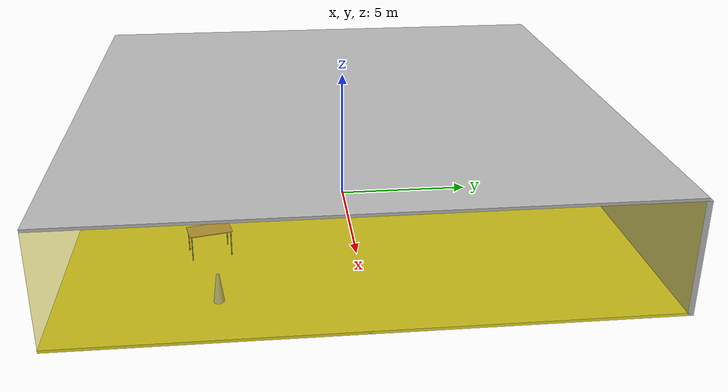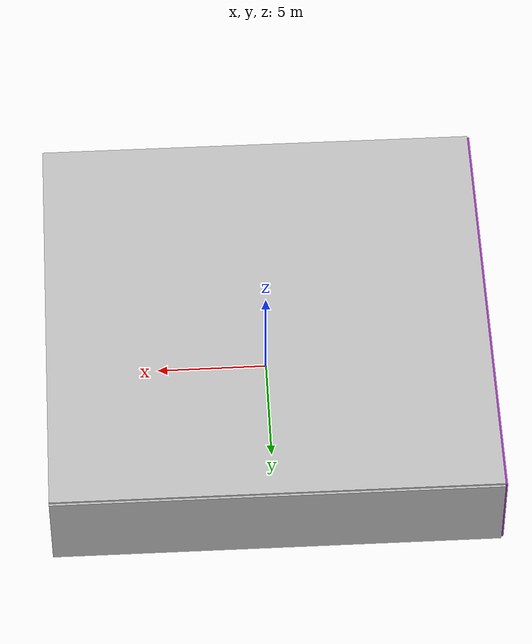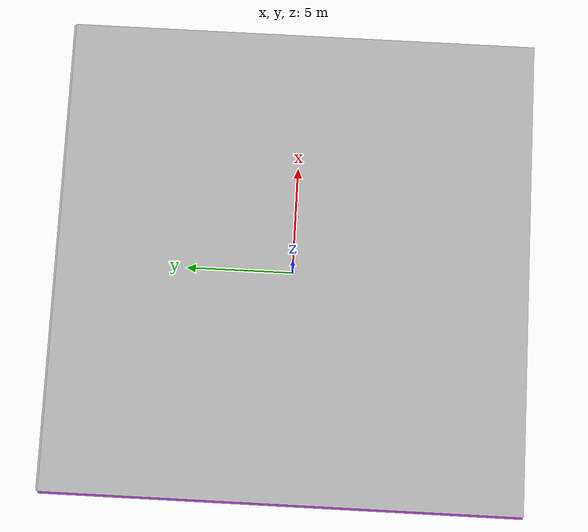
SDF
<sdf version="1.4">
 <world name="default">
  <physics type="ode">
   <max_step_size>0.001</max_step_size>
   <real_time_factor>1</real_time_factor>
   <real_time_update_rate>1000</real_time_update_rate>
   <gravity>0 0 -9.8</gravity>
  </physics>
  <scene><ambient>0.4 0.4 0.4 1</ambient><background>0.7 0.7 0.7 1</background><shadows>1</shadows></scene>
  <model name="Surrounding">
   <static>1</static>
   <link name="Ceiling">
    <collision name="Ceiling_Collision"><geometry><box><size>20 20 0.1</size></box></geometry></collision>
    <visual name="Ceiling_Visual">
     <geometry><box><size>20 20 0.1</size></box></geometry>
     <material>
      <script><uri>file://media/materials/scripts/gazebo.material</uri><name>Gazebo/CloudySky</name></script>
     </material>
    </visual>
    <pose>0 0 4.05 0 0 0</pose>
   </link>
   <link name="Wall_South">
    <collision name="Wall_South_Collision">
     <geometry><box><size>20 0 4</size></box></geometry>
     <pose>0 0 2 0 -0 0</pose>
    </collision>
    <visual name="Wall_South_Visual">
     <pose>0 0 2 0 -0 0</pose>
     <geometry><box><size>20 0 4</size></box></geometry>
     <material>
      <script><uri>file://media/materials/scripts/gazebo.material</uri><name>Gazebo/BlueTransparent</name></script>
     </material>
    </visual>
    <velocity_decay><linear>0</linear><angular>0</angular></velocity_decay>
    <pose>0 -10 0 0 -0 0</pose>
   </link>
   <link name="Wall_East">
    <collision name="Wall_21_Collision">
     <geometry><box><size>20 0 4</size></box></geometry>
     <pose>0 0 2 0 -0 0</pose>
    </collision>
    <visual name="Wall_21_Visual">
     <pose>0 0 2 0 -0 0</pose>
     <geometry><box><size>20 0 4</size></box></geometry>
     <material>
      <script>
       <uri>file://media/materials/scripts/gazebo.material</uri>
       <name>Gazebo/YellowTransparent</name>
      </script>
     </material>
    </visual>
    <velocity_decay><linear>0</linear><angular>0</angular></velocity_decay>
    <pose>10 0 0 0 -0 1.5708</pose>
   </link>
   <link name="Wall_North">
    <collision name="Wall_22_Collision">
     <geometry><box><size>20 0.2 4</size></box></geometry>
     <pose>0 0 2 0 -0 0</pose>
    </collision>
    <visual name="Wall_22_Visual">
     <pose>0 0 2 0 -0 0</pose>
     <geometry><box><size>20 0.2 4</size></box></geometry>
     <material>
      <script><uri>file://media/materials/scripts/gazebo.material</uri><name>Gazebo/PioneerBody</name></script>
     </material>
    </visual>
    <velocity_decay><linear>0</linear><angular>0</angular></velocity_decay>
    <pose>0 10 0 0 -0 0</pose>
   </link>
   <link name="Wall_West">
    <collision name="Wall_23_Collision">
     <geometry><box><size>20 0.2 4</size></box></geometry>
     <pose>0 0 2 0 -0 0</pose>
    </collision>
    <visual name="Wall_23_Visual">
     <pose>0 0 2 0 -0 0</pose>
     <geometry><box><size>20 0.2 4</size></box></geometry>
     <material>
      <script><uri>file://media/materials/scripts/gazebo.material</uri><name>Gazebo/PurpleGlow</name></script>
     </material>
    </visual>
    <velocity_decay><linear>0</linear><angular>0</angular></velocity_decay>
    <pose>-10 0 0 0 0 -1.5708</pose>
   </link>
   <link name="Ground_link">
    <collision name="collision">
     <pose>0 0 .05 0 -0 0</pose>
     <geometry><box><size>20 20 0.1</size></box></geometry>
    </collision>
    <visual name="visual">
     <pose>0 0 .05 0 -0 0</pose>
     <geometry><box><size>20 20 0.1</size></box></geometry>
     <material>
      <script><uri>file://media/materials/scripts/gazebo.material</uri><name>Gazebo/Yellow</name></script>
     </material>
    </visual>
   </link>
   <static>1</static>
  </model>
  <spherical_coordinates>
   <surface_model>EARTH_WGS84</surface_model>
   <latitude_deg>0</latitude_deg>
   <longitude_deg>0</longitude_deg>
   <elevation>0</elevation>
   <heading_deg>0</heading_deg>
  </spherical_coordinates>
  <light name="lightball_0" type="diffuse">
   <diffuse>0.8 0.8 0.8 1</diffuse>
   <specular>0.2 0.2 0.2 1</specular>
   <attenuation>
    <range>100</range>
    <constant>0.7</constant>
    <linear>0.01</linear>
    <quadratic>0.001</quadratic>
   </attenuation>
   <direction>-0.5 0.1 -0.9</direction>
   <pose>-8.56619372233 8.80356854196 2.16092890079 0 0 0</pose>
  </light>
  <light name="lightball_1" type="diffuse">
   <diffuse>0.8 0.8 0.8 1</diffuse>
   <specular>0.2 0.2 0.2 1</specular>
   <attenuation>
    <range>100</range>
    <constant>0.7</constant>
    <linear>0.01</linear>
    <quadratic>0.001</quadratic>
   </attenuation>
   <direction>-0.5 0.1 -0.9</direction>
   <pose>-1.57920094624 2.13455966475 2.3660817796 0 0 0</pose>
  </light>
  <light name="lightball_2" type="diffuse">
   <diffuse>0.8 0.8 0.8 1</diffuse>
   <specular>0.2 0.2 0.2 1</specular>
   <attenuation>
    <range>100</range>
    <constant>0.7</constant>
    <linear>0.01</linear>
    <quadratic>0.001</quadratic>
   </attenuation>
   <direction>-0.5 0.1 -0.9</direction>
   <pose>6.6077838237 4.88754349496 2.53571808917 0 0 0</pose>
  </light>
  <light name="lightball_3" type="diffuse">
   <diffuse>0.8 0.8 0.8 1</diffuse>
   <specular>0.2 0.2 0.2 1</specular>
   <attenuation>
    <range>100</range>
    <constant>0.7</constant>
    <linear>0.01</linear>
    <quadratic>0.001</quadratic>
   </attenuation>
   <direction>-0.5 0.1 -0.9</direction>
   <pose>-6.23433190578 4.80025578071 2.59685106704 0 0 0</pose>
  </light>
  <light name="lightball_4" type="diffuse">
   <diffuse>0.8 0.8 0.8 1</diffuse>
   <specular>0.2 0.2 0.2 1</specular>
   <attenuation>
    <range>100</range>
    <constant>0.7</constant>
    <linear>0.01</linear>
    <quadratic>0.001</quadratic>
   </attenuation>
   <direction>-0.5 0.1 -0.9</direction>
   <pose>-6.62822564204 5.865310887 2.35001310708 0 0 0</pose>
  </light>
  <light name="lightball_5" type="diffuse">
   <diffuse>0.8 0.8 0.8 1</diffuse>
   <specular>0.2 0.2 0.2 1</specular>
   <attenuation>
    <range>100</range>
    <constant>0.7</constant>
    <linear>0.01</linear>
    <quadratic>0.001</quadratic>
   </attenuation>
   <direction>-0.5 0.1 -0.9</direction>
   <pose>-7.41920213094 -3.26273919774 2.99554617902 0 0 0</pose>
  </light>
  <light name="lightball_6" type="diffuse">
   <diffuse>0.8 0.8 0.8 1</diffuse>
   <specular>0.2 0.2 0.2 1</specular>
   <attenuation>
    <range>100</range>
    <constant>0.7</constant>
    <linear>0.01</linear>
    <quadratic>0.001</quadratic>
   </attenuation>
   <direction>-0.5 0.1 -0.9</direction>
   <pose>7.6837068128 2.10912129143 1.72022491398 0 0 0</pose>
  </light>
  <light name="lightball_7" type="diffuse">
   <diffuse>0.8 0.8 0.8 1</diffuse>
   <specular>0.2 0.2 0.2 1</specular>
   <attenuation>
    <range>100</range>
    <constant>0.7</constant>
    <linear>0.01</linear>
    <quadratic>0.001</quadratic>
   </attenuation>
   <direction>-0.5 0.1 -0.9</direction>
   <pose>3.94604699828 9.33631880994 2.73422274543 0 0 0</pose>
  </light>
  <light name="lightball_8" type="diffuse">
   <diffuse>0.8 0.8 0.8 1</diffuse>
   <specular>0.2 0.2 0.2 1</specular>
   <attenuation>
    <range>100</range>
    <constant>0.7</constant>
    <linear>0.01</linear>
    <quadratic>0.001</quadratic>
   </attenuation>
   <direction>-0.5 0.1 -0.9</direction>
   <pose>8.4877687755 -8.80402002795 1.5950002645 0 0 0</pose>
  </light>
  <include><uri>model://cabinet</uri><pose>-8.12652847302 -2.03666324588 0 0 0 2.37322488021</pose></include>
  <include><uri>model://table</uri><pose>-4.80361595934 5.20007191286 0 0 0 2.83239734206</pose></include>
  <include><uri>model://table</uri><pose>-1.69452129639 6.89184432756 0 0 0 0.0758618308832</pose></include>
  <include><uri>model://table</uri><pose>4.62084725016 -5.13112364623 0 0 0 1.78033464289</pose></include>
  <include>
   <uri>model://construction_cone</uri>
   <pose>7.83704308159 -4.7462919805 0 0 0 2.76514670151</pose>
  </include>
 </world>
</sdf>

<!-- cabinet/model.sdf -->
<sdf version="1.5">
  <model name="cabinet">
    <static>true</static>
    <link name="cabinet_bottom_plate">
      <inertial>
        <pose>0 0 -1 0 0 0</pose>
        <inertia>
          <ixx>2.050000</ixx>
          <ixy>0</ixy>
          <ixz>0</ixz>
          <iyy>2.050000</iyy>
          <iyz>0</iyz>
          <izz>2.050000</izz>
        </inertia>
        <mass>25.000000</mass>
      </inertial>
      <collision name="cabinet_bottom_plate_geom">
        <pose>0 0 0.010000 0 0 0</pose>
        <geometry>
          <box>
            <size>0.450000 0.450000 0.020000</size>
          </box>
        </geometry>
      </collision>
      <visual name="cabinet_bottom_plate_geom_visual">
        <pose>0 0 0.010000 0 0 0</pose>
        <geometry>
          <box>
            <size>0.450000 0.450000 0.020000</size>
          </box>
        </geometry>
        <material>
          <script>
            <uri>model://media/materials/scripts/gazebo.material</uri>
            <name>Gazebo/Wood</name>
          </script>
        </material>
      </visual>
      <collision name="cabinet_bottom_plate_geom_cabinet_back_plate">
        <pose>0.235000 0 0.510000 0 0 0</pose>
        <geometry>
          <box>
            <size>0.020000 0.450000 1.020000</size>
          </box>
        </geometry>
      </collision>
      <visual name="cabinet_bottom_plate_geom_cabinet_back_plate_visual">
        <pose>0.235000 0 0.510000 0 0 0</pose>
        <geometry>
          <box>
            <size>0.020000 0.450000 1.020000</size>
          </box>
        </geometry>
        <material>
          <script>
            <uri>model://media/materials/scripts/gazebo.material</uri>
            <name>Gazebo/Wood</name>
          </script>
        </material>
      </visual>
      <collision name="cabinet_bottom_plate_geom_cabinet_left_plate">
        <pose>0 0.235000 0.510000 0 0 0</pose>
        <geometry>
          <box>
            <size>0.450000 0.020000 1.020000</size>
          </box>
        </geometry>
      </collision>
      <visual name="cabinet_bottom_plate_geom_cabinet_left_plate_visual">
        <pose>0 0.235000 0.510000 0 0 0</pose>
        <geometry>
          <box>
            <size>0.450000 0.020000 1.020000</size>
          </box>
        </geometry>
        <material>
          <script>
            <uri>model://media/materials/scripts/gazebo.material</uri>
            <name>Gazebo/Wood</name>
          </script>
        </material>
      </visual>
      <collision name="cabinet_bottom_plate_geom_cabinet_middle_plate">
        <pose>0 0 0.510000 0 0 0</pose>
        <geometry>
          <box>
            <size>0.450000 0.450000 0.020000</size>
          </box>
        </geometry>
      </collision>
      <visual name="cabinet_bottom_plate_geom_cabinet_middle_plate_visual">
        <pose>0 0 0.510000 0 0 0</pose>
        <geometry>
          <box>
            <size>0.450000 0.450000 0.020000</size>
          </box>
        </geometry>
        <material>
          <script>
            <uri>model://media/materials/scripts/gazebo.material</uri>
            <name>Gazebo/Wood</name>
          </script>
        </material>
      </visual>
      <collision name="cabinet_bottom_plate_geom_cabinet_right_plate">
        <pose>0 -0.235000 0.510000 0 0 0</pose>
        <geometry>
          <box>
            <size>0.450000 0.020000 1.020000</size>
          </box>
        </geometry>
      </collision>
      <visual name="cabinet_bottom_plate_geom_cabinet_right_plate_visual">
        <pose>0 -0.235000 0.510000 0 0 0</pose>
        <geometry>
          <box>
            <size>0.450000 0.020000 1.020000</size>
          </box>
        </geometry>
        <material>
          <script>
            <uri>model://media/materials/scripts/gazebo.material</uri>
            <name>Gazebo/Wood</name>
          </script>
        </material>
      </visual>
      <collision name="cabinet_bottom_plate_geom_cabinet_top_plate">
        <pose>0 0 1.010000 0 0 0</pose>
        <geometry>
          <box>
            <size>0.450000 0.450000 0.020000</size>
          </box>
        </geometry>
      </collision>
      <visual name="cabinet_bottom_plate_geom_cabinet_top_plate_visual">
        <pose>0 0 1.010000 0 0 0</pose>
        <geometry>
          <box>
            <size>0.450000 0.450000 0.020000</size>
          </box>
        </geometry>
        <material>
          <script>
            <uri>model://media/materials/scripts/gazebo.material</uri>
            <name>Gazebo/Wood</name>
          </script>
        </material>
      </visual>
    </link>
  </model>
</sdf>

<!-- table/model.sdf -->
<sdf version="1.5">
  <model name="table">
    <static>true</static>
    <link name="link">
      <collision name="surface">
        <pose>0 0 1.0 0 0 0</pose>
        <geometry>
          <box>
            <size>1.5 0.8 0.03</size>
          </box>
        </geometry>
        <surface>
          <friction>
            <ode>
              <mu>0.6</mu>
              <mu2>0.6</mu2>
            </ode>
          </friction>
        </surface>
      </collision>
      <visual name="visual1">
        <pose>0 0 1.0 0 0 0</pose>
        <geometry>
          <box>
            <size>1.5 0.8 0.03</size>
          </box>
        </geometry>
        <material>
          <script>
            <uri>model://media/materials/scripts/gazebo.material</uri>
            <name>Gazebo/Wood</name>
          </script>
        </material>
      </visual>
      <collision name="front_left_leg">
        <pose>0.68 0.38 0.5 0 0 0</pose>
        <geometry>
          <cylinder>
            <radius>0.02</radius>
            <length>1.0</length>
          </cylinder>
        </geometry>
      </collision>
      <visual name="front_left_leg">
        <pose>0.68 0.38 0.5 0 0 0</pose>
        <geometry>
          <cylinder>
            <radius>0.02</radius>
            <length>1.0</length>
          </cylinder>
        </geometry>
        <material>
          <script>
            <uri>model://media/materials/scripts/gazebo.material</uri>
            <name>Gazebo/Grey</name>
          </script>
        </material>
      </visual>
      <collision name="front_right_leg">
        <pose>0.68 -0.38 0.5 0 0 0</pose>
        <geometry>
          <cylinder>
            <radius>0.02</radius>
            <length>1.0</length>
          </cylinder>
        </geometry>
      </collision>
      <visual name="front_right_leg">
        <pose>0.68 -0.38 0.5 0 0 0</pose>
        <geometry>
          <cylinder>
            <radius>0.02</radius>
            <length>1.0</length>
          </cylinder>
        </geometry>
        <material>
          <script>
            <uri>model://media/materials/scripts/gazebo.material</uri>
            <name>Gazebo/Grey</name>
          </script>
        </material>
      </visual>
      <collision name="back_right_leg">
        <pose>-0.68 -0.38 0.5 0 0 0</pose>
        <geometry>
          <cylinder>
            <radius>0.02</radius>
            <length>1.0</length>
          </cylinder>
        </geometry>
      </collision>
      <visual name="back_right_leg">
        <pose>-0.68 -0.38 0.5 0 0 0</pose>
        <geometry>
          <cylinder>
            <radius>0.02</radius>
            <length>1.0</length>
          </cylinder>
        </geometry>
        <material>
          <script>
            <uri>model://media/materials/scripts/gazebo.material</uri>
            <name>Gazebo/Grey</name>
          </script>
        </material>
      </visual>
      <collision name="back_left_leg">
        <pose>-0.68 0.38 0.5 0 0 0</pose>
        <geometry>
          <cylinder>
            <radius>0.02</radius>
            <length>1.0</length>
          </cylinder>
        </geometry>
      </collision>
      <visual name="back_left_leg">
        <pose>-0.68 0.38 0.5 0 0 0</pose>
        <geometry>
          <cylinder>
            <radius>0.02</radius>
            <length>1.0</length>
          </cylinder>
        </geometry>
        <material>
          <script>
            <uri>model://media/materials/scripts/gazebo.material</uri>
            <name>Gazebo/Grey</name>
          </script>
        </material>
      </visual>
    </link>
  </model>
</sdf>

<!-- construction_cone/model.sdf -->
<sdf version="1.5">
  <model name="Construction Cone">
    <link name="link">
      <collision name="collision">
        <geometry>
          <mesh>
            <scale>10 10 10</scale>
            <uri>file://isr-testbed/construction_cone/meshes/construction_cone.dae</uri>
          </mesh>
        </geometry>
      </collision>
      <visual name="visual">
        <geometry>
          <mesh>
            <scale>10 10 10</scale>
            <uri>file://isr-testbed/construction_cone/meshes/construction_cone.dae</uri>
          </mesh>
        </geometry>
      </visual>
    </link>
  </model>
</sdf>
